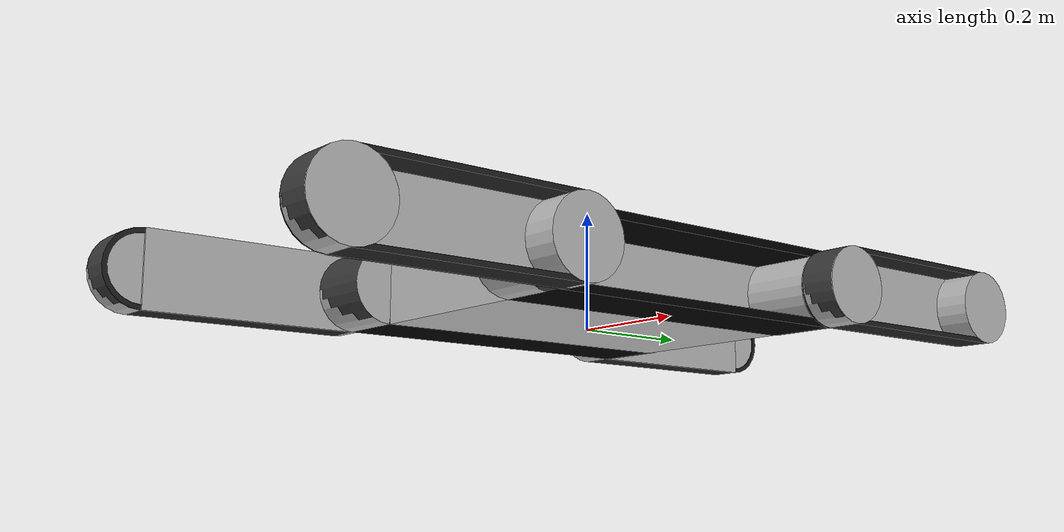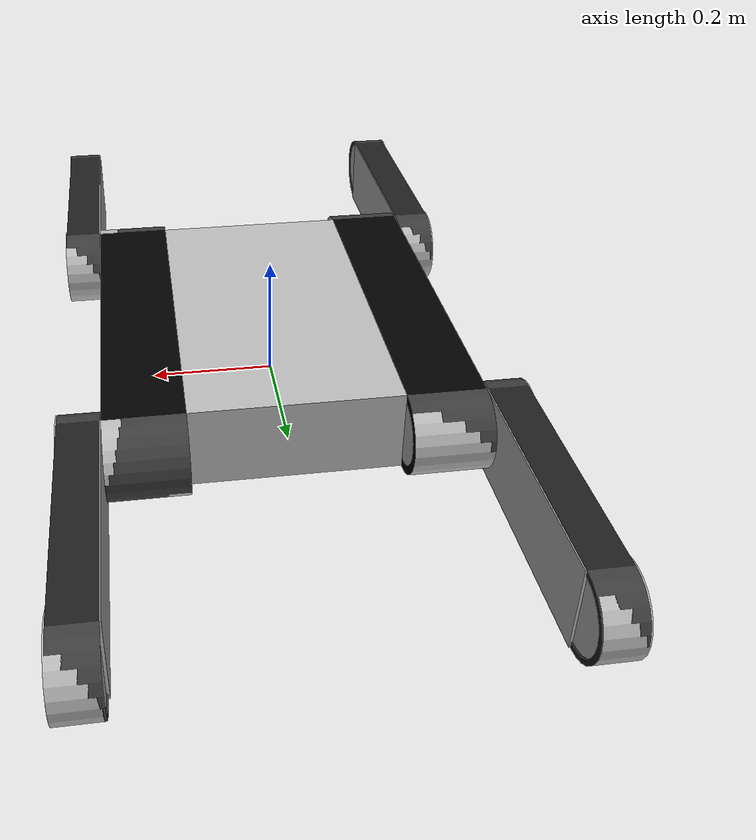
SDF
<?xml version='1.0'?>
<sdf version='1.4'>
  <model name="ugvc_crawler_robot">
    <static>false</static>

<!--__________________body_____________________-->

    <link name='chassis'>
      <pose>0 0 .065 0 0 0</pose>
      <inertial>
      <mass>20</mass>
      </inertial>

      <collision name='collision'>
        <geometry>
          <box>
            <size>.32 .58 .13</size>
          </box>
        </geometry>
      </collision>
      <visual name='visual'>
        <geometry>
          <box>
            <size>.32 .58 .13</size>
          </box>
        </geometry>
      </visual>
<!--__________________/body_____________________-->
<!--__________________crawler_____________________-->

      <visual name="right_crawler_visual">
        <pose>-0.28 -0.29 0 1.5707 0 1.5707</pose>
        <geometry>
          <mesh>
            <uri>model://ugvc_crawler_robot/dae/main_crawler.dae</uri>
          </mesh>
        </geometry>
      </visual>

      <visual name="left_crawler_visual">
        <pose>0.28 -0.29 0 -1.5707 0 1.5707</pose>
        <geometry>
          <mesh>
            <uri>model://ugvc_crawler_robot/dae/main_crawler.dae</uri>
          </mesh>
        </geometry>
      </visual>

</link>
<!--__________________/body_____________________-->

<!--__________________right_crawler___________________-->

<link name="right_rear_wheel">
    <pose>-0.22 0.29 0.065 0 1.5707 0</pose>
    <inertial>
      <inertia>
	<ixx>0.001</ixx>
	<ixy>0</ixy>
	<ixz>0</ixz>
	<iyy>0.001</iyy>
	<iyz>0</iyz>
	<izz>0.001</izz>
      </inertia>
      <mass>1.0</mass>
    </inertial>

    <collision name="collision">
      <geometry>
            <cylinder>
              <radius>.065</radius>
              <length>.12</length>
            </cylinder>
      </geometry>
        <surface>
          <friction>
            <ode>
              <mu>.8</mu>
              <mu2>.8</mu2>
            </ode>
          </friction>
        </surface>
    </collision>
    <visual name="visual">
      <geometry>
            <cylinder>
              <radius>.065</radius>
              <length>.12</length>
            </cylinder>
      </geometry>
    </visual>
  </link>

<link name="right_front_wheel">
    <pose>-0.22 -0.29 0.065 0 1.5707 0</pose>
    <inertial>
      <inertia>
	<ixx>0.001</ixx>
	<ixy>0</ixy>
	<ixz>0</ixz>
	<iyy>0.001</iyy>
	<iyz>0</iyz>
	<izz>0.001</izz>
      </inertia>
      <mass>1.0</mass>
    </inertial>

    <collision name="collision">
      <geometry>
            <cylinder>
              <radius>.065</radius>
              <length>.12</length>
            </cylinder>
      </geometry>
        <surface>
          <friction>
            <ode>
              <mu>.8</mu>
              <mu2>.8</mu2>
            </ode>
          </friction>
        </surface>
    </collision>
    <visual name="visual">
      <geometry>
            <cylinder>
              <radius>.065</radius>
              <length>.12</length>
            </cylinder>
      </geometry>
    </visual>
  </link>

<!--__________________/right_crawler___________________-->

<!--__________________left_crawler___________________-->

 <link name="left_rear_wheel">
    <pose>0.22 0.29 0.065 0 1.5707 0</pose>

    <inertial>
      <inertia>
	<ixx>0.001</ixx>
	<ixy>0</ixy>
	<ixz>0</ixz>
	<iyy>0.001</iyy>
	<iyz>0</iyz>
	<izz>0.001</izz>
      </inertia>
      <mass>1.0</mass>
    </inertial>

    <collision name="collision">
      <geometry>
            <cylinder>
              <radius>.065</radius>
              <length>.12</length>
            </cylinder>
      </geometry>
        <surface>
          <friction>
            <ode>
              <mu>.8</mu>
              <mu2>.8</mu2>
            </ode>
          </friction>
        </surface>
    </collision>
    <visual name="visual">
      <geometry>
            <cylinder>
              <radius>.065</radius>
              <length>.12</length>
            </cylinder>
      </geometry>
    </visual>
  </link>

<link name="left_front_wheel">
    <pose>0.22 -0.29 0.065 0 1.5707 0</pose>

    <inertial>
      <inertia>
	<ixx>0.001</ixx>
	<ixy>0</ixy>
	<ixz>0</ixz>
	<iyy>0.001</iyy>
	<iyz>0</iyz>
	<izz>0.001</izz>
      </inertia>
      <mass>1.0</mass>
    </inertial>

    <collision name="collision">
      <geometry>
            <cylinder>
              <radius>.065</radius>
              <length>.12</length>
            </cylinder>
      </geometry>
        <surface>
          <friction>
            <ode>
              <mu>.8</mu>
              <mu2>.8</mu2>
            </ode>
          </friction>
        </surface>
    </collision>
    <visual name="visual">
      <geometry>
            <cylinder>
              <radius>.065</radius>
              <length>.12</length>
            </cylinder>
      </geometry>
    </visual>
  </link>

<!--__________________/left_crawler___________________-->

<!--__________________right_rear_arm__________________-->

<link name="right_rear_arm">
    <pose>-0.282 0.475 0.065 0 0 0</pose>
    <collision name="collision">
      <geometry>
            <box>
            <size>.004 .37 .13</size>
            </box>
      </geometry>
    </collision>

    <visual name="visual">
      <geometry>
            <box>
            <size>.004 .37 .13</size>
            </box>
      </geometry>
    </visual>

      <visual name="crawler_visual">
    <pose>-0.06 -0.185 0 1.5707 0 1.5707</pose>
        <geometry>
          <mesh>
            <uri>model://ugvc_crawler_robot/dae/flipper_crawler.dae</uri>
          </mesh>
        </geometry>
      </visual>
  </link>

<link name="right_rear_arm_wheel_1">
    <pose>-0.314 0.29 0.065 0 1.5707 0</pose>

    <inertial>
      <inertia>
	<ixx>0.001</ixx>
	<ixy>0</ixy>
	<ixz>0</ixz>
	<iyy>0.001</iyy>
	<iyz>0</iyz>
	<izz>0.001</izz>
      </inertia>
      <mass>1.0</mass>
    </inertial>

    <collision name="collision">
      <geometry>
            <cylinder>
              <radius>.065</radius>
              <length>.06</length>
            </cylinder>
      </geometry>
        <surface>
          <friction>
            <ode>
              <mu>.8</mu>
              <mu2>.8</mu2>
            </ode>
          </friction>
        </surface>
    </collision>
    <visual name="visual">
      <geometry>
            <cylinder>
              <radius>.065</radius>
              <length>.06</length>
            </cylinder>
      </geometry>
    </visual>
      <self_collide>0</self_collide>
  </link>

<link name="right_rear_arm_wheel_2">
    <pose>-0.314 0.66 0.065 0 1.5707 0</pose>

    <inertial>
      <inertia>
	<ixx>0.001</ixx>
	<ixy>0</ixy>
	<ixz>0</ixz>
	<iyy>0.001</iyy>
	<iyz>0</iyz>
	<izz>0.001</izz>
      </inertia>
      <mass>1.0</mass>
    </inertial>

    <collision name="collision">
      <geometry>
            <cylinder>
              <radius>.065</radius>
              <length>.06</length>
            </cylinder>
      </geometry>
        <surface>
          <friction>
            <ode>
              <mu>.8</mu>
              <mu2>.8</mu2>
            </ode>
          </friction>
        </surface>
    </collision>
    <visual name="visual">
      <geometry>
            <cylinder>
              <radius>.065</radius>
              <length>.06</length>
            </cylinder>
      </geometry>
    </visual>
      <self_collide>0</self_collide>
  </link>

<!--__________________/right_rear_arm__________________-->

<!--__________________left_rear_arm__________________-->

<link name="left_rear_arm">
    <pose>0.282 0.475 0.065 0 0 0</pose>
    <collision name="collision">

      <geometry>
            <box>
            <size>.004 .37 .13</size>
            </box>
      </geometry>
    </collision>

    <visual name="visual">

      <geometry>
            <box>
            <size>.004 .37 .13</size>
            </box>
      </geometry>
    </visual>

      <visual name="crawler_visual">
    <pose>0 -0.185 0 1.5707 0 1.5707</pose>
        <geometry>
          <mesh>
            <uri>model://ugvc_crawler_robot/dae/flipper_crawler.dae</uri>
          </mesh>
        </geometry>
      </visual>
  </link>

<link name="left_rear_arm_wheel_1">
    <pose>0.314 0.29 0.065 0 1.5707 0</pose>

    <inertial>
      <inertia>
	<ixx>0.001</ixx>
	<ixy>0</ixy>
	<ixz>0</ixz>
	<iyy>0.001</iyy>
	<iyz>0</iyz>
	<izz>0.001</izz>
      </inertia>
      <mass>1.0</mass>
    </inertial>

    <collision name="collision">
      <geometry>
            <cylinder>
              <radius>.065</radius>
              <length>.06</length>
            </cylinder>
      </geometry>
        <surface>
          <friction>
            <ode>
              <mu>.8</mu>
              <mu2>.8</mu2>
            </ode>
          </friction>
        </surface>
    </collision>
    <visual name="visual">
      <geometry>
            <cylinder>
              <radius>.065</radius>
              <length>.06</length>
            </cylinder>
      </geometry>
    </visual>
      <self_collide>0</self_collide>
  </link>

<link name="left_rear_arm_wheel_2">
    <pose>0.314 0.66 0.065 0 1.5707 0</pose>

    <inertial>
      <inertia>
	<ixx>0.001</ixx>
	<ixy>0</ixy>
	<ixz>0</ixz>
	<iyy>0.001</iyy>
	<iyz>0</iyz>
	<izz>0.001</izz>
      </inertia>
      <mass>1.0</mass>
    </inertial>

    <collision name="collision">
      <geometry>
            <cylinder>
              <radius>.065</radius>
              <length>.06</length>
            </cylinder>
      </geometry>
        <surface>
          <friction>
            <ode>
              <mu>.8</mu>
              <mu2>.8</mu2>
            </ode>
          </friction>
        </surface>
    </collision>
    <visual name="visual">
      <geometry>
            <cylinder>
              <radius>.065</radius>
              <length>.06</length>
            </cylinder>
      </geometry>
    </visual>
      <self_collide>0</self_collide>
  </link>

<!--__________________/left_rear_arm__________________-->

<!--__________________right_front_arm__________________-->

<link name="right_front_arm">
    <pose>-0.282 -0.475 0.065 0 0 0</pose>
    <collision name="collision">
      <geometry>
            <box>
            <size>.004 .37 .13</size>
            </box>
      </geometry>
    </collision>

    <visual name="visual">
      <geometry>
            <box>
            <size>.004 .37 .13</size>
            </box>
      </geometry>
    </visual>

      <visual name="crawler_visual">
    <pose>-0.06 -0.185 0 1.5707 0 1.5707</pose>
        <geometry>
          <mesh>
            <uri>model://ugvc_crawler_robot/dae/flipper_crawler.dae</uri>
          </mesh>
        </geometry>
      </visual>
  </link>

<link name="right_front_arm_wheel_1">
    <pose>-0.314 -0.29 0.065 0 1.5707 0</pose>

    <inertial>
      <inertia>
	<ixx>0.001</ixx>
	<ixy>0</ixy>
	<ixz>0</ixz>
	<iyy>0.001</iyy>
	<iyz>0</iyz>
	<izz>0.001</izz>
      </inertia>
      <mass>1.0</mass>
    </inertial>

    <collision name="collision">
      <geometry>
            <cylinder>
              <radius>.065</radius>
              <length>.06</length>
            </cylinder>
      </geometry>
        <surface>
          <friction>
            <ode>
              <mu>.8</mu>
              <mu2>.8</mu2>
            </ode>
          </friction>
        </surface>
    </collision>
    <visual name="visual">
      <geometry>
            <cylinder>
              <radius>.065</radius>
              <length>.06</length>
            </cylinder>
      </geometry>
    </visual>
      <self_collide>0</self_collide>
  </link>

<link name="right_front_arm_wheel_2">
    <pose>-0.314 -0.66 0.065 0 1.5707 0</pose>

    <inertial>
      <inertia>
	<ixx>0.001</ixx>
	<ixy>0</ixy>
	<ixz>0</ixz>
	<iyy>0.001</iyy>
	<iyz>0</iyz>
	<izz>0.001</izz>
      </inertia>
      <mass>1.0</mass>
    </inertial>

    <collision name="collision">
      <geometry>
            <cylinder>
              <radius>.065</radius>
              <length>.06</length>
            </cylinder>
      </geometry>
        <surface>
          <friction>
            <ode>
              <mu>.8</mu>
              <mu2>.8</mu2>
            </ode>
          </friction>
        </surface>
    </collision>
    <visual name="visual">
      <geometry>
            <cylinder>
              <radius>.065</radius>
              <length>.06</length>
            </cylinder>
      </geometry>
    </visual>
      <self_collide>0</self_collide>
  </link>

<!--__________________/right_front_arm__________________-->

<!--__________________left_front_arm__________________-->

<link name="left_front_arm">
    <pose>0.282 -0.475 0.065 0 0 0</pose>
    <collision name="collision">
      <geometry>
            <box>
            <size>.004 .37 .13</size>
            </box>
      </geometry>
    </collision>

    <visual name="visual">
      <geometry>
            <box>
            <size>.004 .37 .13</size>
            </box>
      </geometry>
    </visual>

      <visual name="crawler_visual">
    <pose>0 -0.185 0 1.5707 0 1.5707</pose>
        <geometry>
          <mesh>
            <uri>model://ugvc_crawler_robot/dae/flipper_crawler.dae</uri>
          </mesh>
        </geometry>
      </visual>
  </link>

<link name="left_front_arm_wheel_1">
    <pose>0.314 -0.29 0.065 0 1.5707 0</pose>

    <inertial>
      <inertia>
	<ixx>0.001</ixx>
	<ixy>0</ixy>
	<ixz>0</ixz>
	<iyy>0.001</iyy>
	<iyz>0</iyz>
	<izz>0.001</izz>
      </inertia>
      <mass>1.0</mass>
    </inertial>

    <collision name="collision">
      <geometry>
            <cylinder>
              <radius>.065</radius>
              <length>.06</length>
            </cylinder>
      </geometry>
        <surface>
          <friction>
            <ode>
              <mu>.8</mu>
              <mu2>.8</mu2>
            </ode>
          </friction>
        </surface>
    </collision>
    <visual name="visual">
      <geometry>
            <cylinder>
              <radius>.065</radius>
              <length>.06</length>
            </cylinder>
      </geometry>
    </visual>
      <self_collide>0</self_collide>
  </link>

<link name="left_front_arm_wheel_2">
    <pose>0.314 -0.66 0.065 0 1.5707 0</pose>

    <inertial>
      <inertia>
	<ixx>0.001</ixx>
	<ixy>0</ixy>
	<ixz>0</ixz>
	<iyy>0.001</iyy>
	<iyz>0</iyz>
	<izz>0.001</izz>
      </inertia>
      <mass>1.0</mass>
    </inertial>

    <collision name="collision">
      <geometry>
            <cylinder>
              <radius>.065</radius>
              <length>.06</length>
            </cylinder>
      </geometry>
        <surface>
          <friction>
            <ode>
              <mu>.8</mu>
              <mu2>.8</mu2>
            </ode>
          </friction>
        </surface>
    </collision>
    <visual name="visual">
      <geometry>
            <cylinder>
              <radius>.065</radius>
              <length>.06</length>
            </cylinder>
      </geometry>
    </visual>
      <self_collide>0</self_collide>
  </link>

<!--__________________/left_front_arm__________________-->

<!--__________________joint___________________-->

<joint type="revolute" name="right_rear">
    <pose>0 0 0.06 0 0 0</pose>
    <child>right_rear_wheel</child>
    <parent>chassis</parent>
    <axis>
      <xyz>1 0 0</xyz>
<use_parent_model_frame>true</use_parent_model_frame>
    </axis>
</joint>

<joint type="revolute" name="right_front">
    <pose>0 0 0.06 0 0 0</pose>
    <child>right_front_wheel</child>
    <parent>chassis</parent>
    <axis>
      <xyz>1 0 0</xyz>
<use_parent_model_frame>true</use_parent_model_frame>
    </axis>
</joint>

<joint type="revolute" name="left_rear">
    <pose>0 0 -0.06 0 0 0</pose>
    <child>left_rear_wheel</child>
    <parent>chassis</parent>
    <axis>
      <xyz>1 0 0</xyz>
<use_parent_model_frame>true</use_parent_model_frame>
    </axis>
  </joint>

<joint type="revolute" name="left_front">
    <pose>0 0 -0.06 0 0 0</pose>
    <child>left_front_wheel</child>
    <parent>chassis</parent>
    <axis>
      <xyz>1 0 0</xyz>
<use_parent_model_frame>true</use_parent_model_frame>
    </axis>
</joint>

<joint type="revolute" name="left_rear_arm">
    <pose>0 -0.185 0.002 0 0 0</pose>
    <child>left_rear_arm</child>
    <parent>chassis</parent>
    <axis>
      <xyz>1 0 0</xyz>
<use_parent_model_frame>true</use_parent_model_frame>
          <dynamics>
            <damping>.5</damping>
          </dynamics>
          <limit>

	  <velocity>1</velocity>

          </limit>
    </axis>
</joint>

<joint type="revolute" name="right_rear_arm">
    <pose>0 -0.185 -0.002 0 0 0</pose>
    <child>right_rear_arm</child>
    <parent>chassis</parent>
    <axis>
      <xyz>1 0 0</xyz>
<use_parent_model_frame>true</use_parent_model_frame>
          <dynamics>
            <damping>.5</damping>
          </dynamics>
          <limit>

	  <velocity>1</velocity>

          </limit>
    </axis>
</joint>

<joint type="revolute" name="left_front_arm">
    <pose>0 0.185 0.002 0 0 0</pose>
    <child>left_front_arm</child>
    <parent>chassis</parent>
    <axis>
      <xyz>1 0 0</xyz>
<use_parent_model_frame>true</use_parent_model_frame>
          <dynamics>
            <damping>.5</damping>
          </dynamics>
          <limit>

	  <velocity>1</velocity>

          </limit>
    </axis>
</joint>

<joint type="revolute" name="right_front_arm">
    <pose>0 0.185 -0.002 0 0 0</pose>
    <child>right_front_arm</child>
    <parent>chassis</parent>
    <axis>
      <xyz>1 0 0</xyz>
<use_parent_model_frame>true</use_parent_model_frame>
          <dynamics>
            <damping>.5</damping>
          </dynamics>
          <limit>

	  <velocity>1</velocity>

          </limit>
    </axis>
</joint>

<joint type="revolute" name="right_rear_arm_wheel_1">
    <pose>0 0 0.03 0 0 0</pose>
    <child>right_rear_arm_wheel_1</child>
    <parent>right_rear_arm</parent>
    <axis>
      <xyz>1 0 0</xyz>
<use_parent_model_frame>true</use_parent_model_frame>
    </axis>
</joint>

<joint type="revolute" name="right_rear_arm_wheel_2">
    <pose>0 0 0.03 0 0 0</pose>
    <child>right_rear_arm_wheel_2</child>
    <parent>right_rear_arm</parent>
    <axis>
      <xyz>1 0 0</xyz>
<use_parent_model_frame>true</use_parent_model_frame>
    </axis>
</joint>

<joint type="revolute" name="right_front_arm_wheel_1">
    <pose>0 0 0.03 0 0 0</pose>
    <child>right_front_arm_wheel_1</child>
    <parent>right_front_arm</parent>
    <axis>
      <xyz>1 0 0</xyz>
<use_parent_model_frame>true</use_parent_model_frame>
    </axis>
</joint>

<joint type="revolute" name="right_front_arm_wheel_2">
    <pose>0 0 0.03 0 0 0</pose>
    <child>right_front_arm_wheel_2</child>
    <parent>right_front_arm</parent>
    <axis>
      <xyz>1 0 0</xyz>
<use_parent_model_frame>true</use_parent_model_frame>
    </axis>
</joint>

<joint type="revolute" name="left_rear_arm_wheel_1">
    <pose>0 0 -0.03 0 0 0</pose>
    <child>left_rear_arm_wheel_1</child>
    <parent>left_rear_arm</parent>
    <axis>
      <xyz>1 0 0</xyz>
<use_parent_model_frame>true</use_parent_model_frame>
    </axis>
</joint>

<joint type="revolute" name="left_rear_arm_wheel_2">
    <pose>0 0 -0.03 0 0 0</pose>
    <child>left_rear_arm_wheel_2</child>
    <parent>left_rear_arm</parent>
    <axis>
      <xyz>1 0 0</xyz>
<use_parent_model_frame>true</use_parent_model_frame>
    </axis>
</joint>

<joint type="revolute" name="left_front_arm_wheel_1">
    <pose>0 0 -0.03 0 0 0</pose>
    <child>left_front_arm_wheel_1</child>
    <parent>left_front_arm</parent>
    <axis>
      <xyz>1 0 0</xyz>
<use_parent_model_frame>true</use_parent_model_frame>
    </axis>
</joint>

<joint type="revolute" name="left_front_arm_wheel_2">
    <pose>0 0 -0.03 0 0 0</pose>
    <child>left_front_arm_wheel_2</child>
    <parent>left_front_arm</parent>
    <axis>
      <xyz>1 0 0</xyz>
<use_parent_model_frame>true</use_parent_model_frame>
    </axis>
</joint>

<!--__________________/joint___________________-->

  </model>
</sdf>
